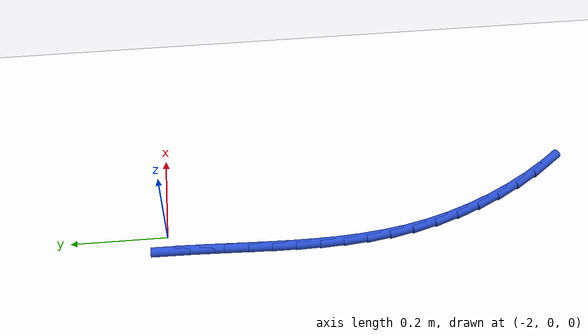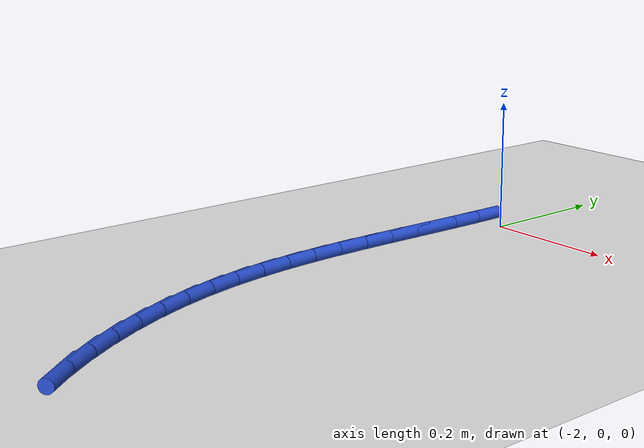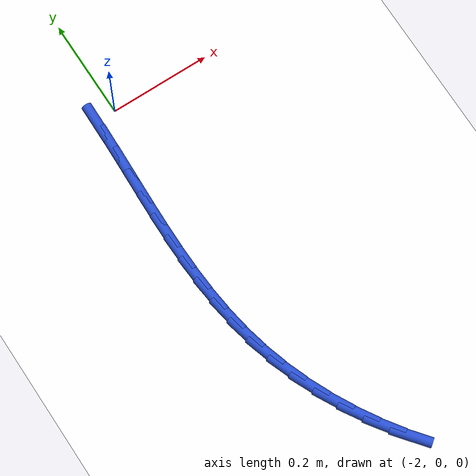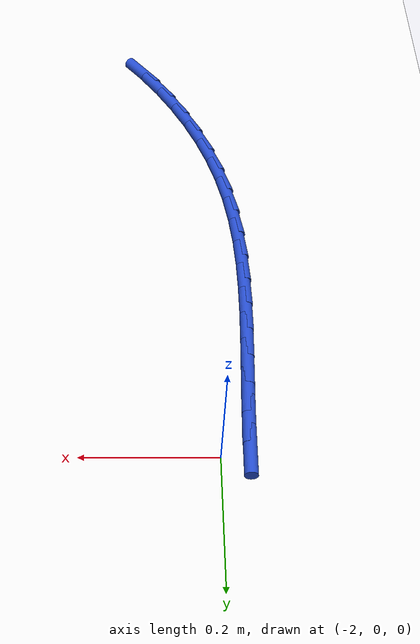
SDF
<sdf version="1.6">
 <world name="default">
  <model name="ground_plane">
   <static>1</static>
   <link name="link">
    <collision name="collision">
     <geometry><plane><normal>0 0 1</normal><size>100 100</size></plane></geometry>
     <surface><friction><ode><mu>100</mu><mu2>50</mu2></ode></friction></surface>
    </collision>
    <visual name="visual">
     <cast_shadows>0</cast_shadows>
     <geometry><plane><normal>0 0 1</normal><size>100 100</size></plane></geometry>
     <material>
      <script><uri>file://media/materials/scripts/gazebo.material</uri><name>Gazebo/WhiteGlow</name></script>
     </material>
    </visual>
   </link>
  </model>
  <model name="line">
   <link name="link_70">
    <pose>-2.0409434567465357 -0.006073413039268928 0.01 0 1.57 1.5576702714785604</pose>
    <collision name="collision">
     <geometry><cylinder><radius>0.01</radius><length>0.08</length></cylinder></geometry>
    </collision>
    <visual name="visual">
     <material>
      <script><name>Gazebo/Blue</name><uri>file://media/materials/scripts/gazebo.material</uri></script>
     </material>
     <geometry><cylinder><radius>0.01</radius><length>0.08</length></cylinder></geometry>
    </visual>
   </link>
   <link name="link_71">
    <pose>-2.0416012531033827 -0.05618432317843016 0.01 0 1.57 1.5430446949970251</pose>
    <collision name="collision">
     <geometry><cylinder><radius>0.01</radius><length>0.08</length></cylinder></geometry>
    </collision>
    <visual name="visual">
     <material>
      <script><name>Gazebo/Blue</name><uri>file://media/materials/scripts/gazebo.material</uri></script>
     </material>
     <geometry><cylinder><radius>0.01</radius><length>0.08</length></cylinder></geometry>
    </visual>
   </link>
   <link name="link_72">
    <pose>-2.042985355515464 -0.10604615041591037 0.01 0 1.57 1.536912119272726</pose>
    <collision name="collision">
     <geometry><cylinder><radius>0.01</radius><length>0.08</length></cylinder></geometry>
    </collision>
    <visual name="visual">
     <material>
      <script><name>Gazebo/Blue</name><uri>file://media/materials/scripts/gazebo.material</uri></script>
     </material>
     <geometry><cylinder><radius>0.01</radius><length>0.08</length></cylinder></geometry>
    </visual>
   </link>
   <link name="link_73">
    <pose>-2.0446672133911723 -0.15566260245098812 0.01 0 1.57 1.539392588114129</pose>
    <collision name="collision">
     <geometry><cylinder><radius>0.01</radius><length>0.08</length></cylinder></geometry>
    </collision>
    <visual name="visual">
     <material>
      <script><name>Gazebo/Blue</name><uri>file://media/materials/scripts/gazebo.material</uri></script>
     </material>
     <geometry><cylinder><radius>0.01</radius><length>0.08</length></cylinder></geometry>
    </visual>
   </link>
   <link name="link_74">
    <pose>-2.0462182761388994 -0.20503738698293977 0.01 0 1.57 1.5506163007176474</pose>
    <collision name="collision">
     <geometry><cylinder><radius>0.01</radius><length>0.08</length></cylinder></geometry>
    </collision>
    <visual name="visual">
     <material>
      <script><name>Gazebo/Blue</name><uri>file://media/materials/scripts/gazebo.material</uri></script>
     </material>
     <geometry><cylinder><radius>0.01</radius><length>0.08</length></cylinder></geometry>
    </visual>
   </link>
   <link name="link_75">
    <pose>-2.047209993167037 -0.25417421171104404 0.01 0 1.57 1.5707181976346167</pose>
    <collision name="collision">
     <geometry><cylinder><radius>0.01</radius><length>0.08</length></cylinder></geometry>
    </collision>
    <visual name="visual">
     <material>
      <script><name>Gazebo/Blue</name><uri>file://media/materials/scripts/gazebo.material</uri></script>
     </material>
     <geometry><cylinder><radius>0.01</radius><length>0.08</length></cylinder></geometry>
    </visual>
   </link>
   <link name="link_76">
    <pose>-2.0472138138839795 -0.30307678433457885 0.01 0 1.57 -1.5417811040222282</pose>
    <collision name="collision">
     <geometry><cylinder><radius>0.01</radius><length>0.08</length></cylinder></geometry>
    </collision>
    <visual name="visual">
     <material>
      <script><name>Gazebo/Blue</name><uri>file://media/materials/scripts/gazebo.material</uri></script>
     </material>
     <geometry><cylinder><radius>0.01</radius><length>0.08</length></cylinder></geometry>
    </visual>
   </link>
   <link name="link_77">
    <pose>-2.045801187698116 -0.35174881255282187 0.01 0 1.57 -1.5036539155028252</pose>
    <collision name="collision">
     <geometry><cylinder><radius>0.01</radius><length>0.08</length></cylinder></geometry>
    </collision>
    <visual name="visual">
     <material>
      <script><name>Gazebo/Blue</name><uri>file://media/materials/scripts/gazebo.material</uri></script>
     </material>
     <geometry><cylinder><radius>0.01</radius><length>0.08</length></cylinder></geometry>
    </visual>
   </link>
   <link name="link_78">
    <pose>-2.042543564017842 -0.4001940040650519 0.01 0 1.57 -1.4565933230764017</pose>
    <collision name="collision">
     <geometry><cylinder><radius>0.01</radius><length>0.08</length></cylinder></geometry>
    </collision>
    <visual name="visual">
     <material>
      <script><name>Gazebo/Blue</name><uri>file://media/materials/scripts/gazebo.material</uri></script>
     </material>
     <geometry><cylinder><radius>0.01</radius><length>0.08</length></cylinder></geometry>
    </visual>
   </link>
   <link name="link_79">
    <pose>-2.0370123922515475 -0.4484160665705451 0.01 0 1.57 -1.4009321210366774</pose>
    <collision name="collision">
     <geometry><cylinder><radius>0.01</radius><length>0.08</length></cylinder></geometry>
    </collision>
    <visual name="visual">
     <material>
      <script><name>Gazebo/Blue</name><uri>file://media/materials/scripts/gazebo.material</uri></script>
     </material>
     <geometry><cylinder><radius>0.01</radius><length>0.08</length></cylinder></geometry>
    </visual>
   </link>
   <link name="link_80">
    <pose>-2.0287791218076254 -0.49641870776858044 0.01 0 1.57 -1.3373809108801404</pose>
    <collision name="collision">
     <geometry><cylinder><radius>0.01</radius><length>0.08</length></cylinder></geometry>
    </collision>
    <visual name="visual">
     <material>
      <script><name>Gazebo/Blue</name><uri>file://media/materials/scripts/gazebo.material</uri></script>
     </material>
     <geometry><cylinder><radius>0.01</radius><length>0.08</length></cylinder></geometry>
    </visual>
   </link>
   <link name="link_81">
    <pose>-2.017418177961507 -0.544204177733968 0.01 0 1.57 -1.2703675185386836</pose>
    <collision name="collision">
     <geometry><cylinder><radius>0.01</radius><length>0.08</length></cylinder></geometry>
    </collision>
    <visual name="visual">
     <material>
      <script><name>Gazebo/Blue</name><uri>file://media/materials/scripts/gazebo.material</uri></script>
     </material>
     <geometry><cylinder><radius>0.01</radius><length>0.08</length></cylinder></geometry>
    </visual>
   </link>
   <link name="link_82">
    <pose>-2.0027121118983975 -0.5916727833382417 0.01 0 1.57 -1.2055739033956772</pose>
    <collision name="collision">
     <geometry><cylinder><radius>0.01</radius><length>0.08</length></cylinder></geometry>
    </collision>
    <visual name="visual">
     <material>
      <script><name>Gazebo/Blue</name><uri>file://media/materials/scripts/gazebo.material</uri></script>
     </material>
     <geometry><cylinder><radius>0.01</radius><length>0.08</length></cylinder></geometry>
    </visual>
   </link>
   <link name="link_83">
    <pose>-1.9847843323561793 -0.6385578742931142 0.01 0 1.57 -1.1427905472227373</pose>
    <collision name="collision">
     <geometry><cylinder><radius>0.01</radius><length>0.08</length></cylinder></geometry>
    </collision>
    <visual name="visual">
     <material>
      <script><name>Gazebo/Blue</name><uri>file://media/materials/scripts/gazebo.material</uri></script>
     </material>
     <geometry><cylinder><radius>0.01</radius><length>0.08</length></cylinder></geometry>
    </visual>
   </link>
   <link name="link_84">
    <pose>-1.963789812627491 -0.6845773395162768 0.01 0 1.57 -1.0812781031653418</pose>
    <collision name="collision">
     <geometry><cylinder><radius>0.01</radius><length>0.08</length></cylinder></geometry>
    </collision>
    <visual name="visual">
     <material>
      <script><name>Gazebo/Blue</name><uri>file://media/materials/scripts/gazebo.material</uri></script>
     </material>
     <geometry><cylinder><radius>0.01</radius><length>0.08</length></cylinder></geometry>
    </visual>
   </link>
   <link name="link_85">
    <pose>-1.9398835260049712 -0.7294490679254202 0.01 0 1.57 -1.0203173636024117</pose>
    <collision name="collision">
     <geometry><cylinder><radius>0.01</radius><length>0.08</length></cylinder></geometry>
    </collision>
    <visual name="visual">
     <material>
      <script><name>Gazebo/Blue</name><uri>file://media/materials/scripts/gazebo.material</uri></script>
     </material>
     <geometry><cylinder><radius>0.01</radius><length>0.08</length></cylinder></geometry>
    </visual>
   </link>
   <link name="link_86">
    <pose>-1.9132204457812583 -0.7728909484382351 0.01 0 1.57 -0.9592031255716564</pose>
    <collision name="collision">
     <geometry><cylinder><radius>0.01</radius><length>0.08</length></cylinder></geometry>
    </collision>
    <visual name="visual">
     <material>
      <script><name>Gazebo/Blue</name><uri>file://media/materials/scripts/gazebo.material</uri></script>
     </material>
     <geometry><cylinder><radius>0.01</radius><length>0.08</length></cylinder></geometry>
    </visual>
   </link>
   <link name="link_87">
    <pose>-1.8839555452489911 -0.8146208699724133 0.01 0 1.57 -0.8972370649299861</pose>
    <collision name="collision">
     <geometry><cylinder><radius>0.01</radius><length>0.08</length></cylinder></geometry>
    </collision>
    <visual name="visual">
     <material>
      <script><name>Gazebo/Blue</name><uri>file://media/materials/scripts/gazebo.material</uri></script>
     </material>
     <geometry><cylinder><radius>0.01</radius><length>0.08</length></cylinder></geometry>
    </visual>
   </link>
  </model>
 </world>
</sdf>
